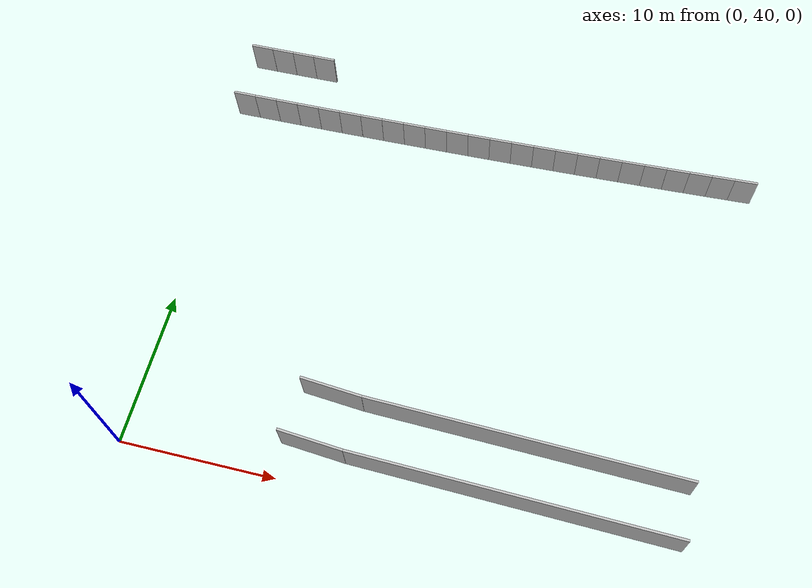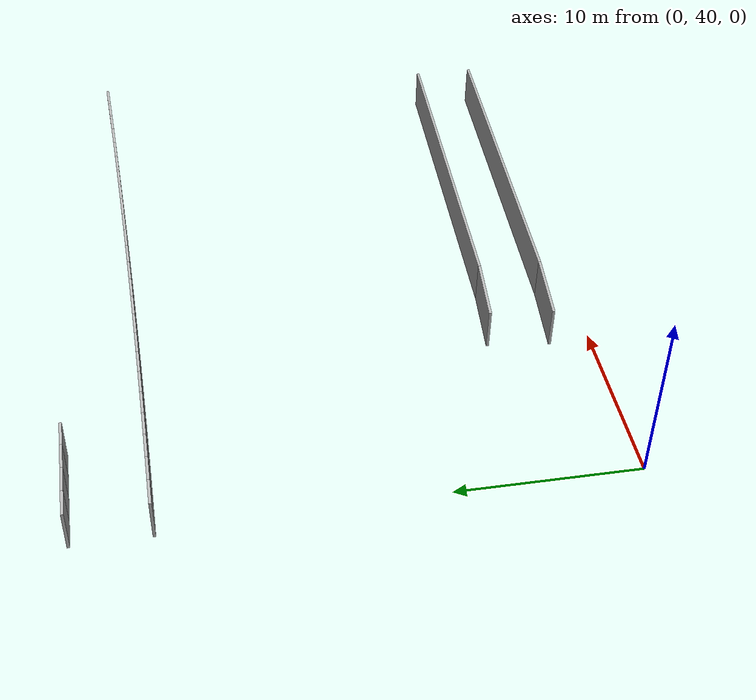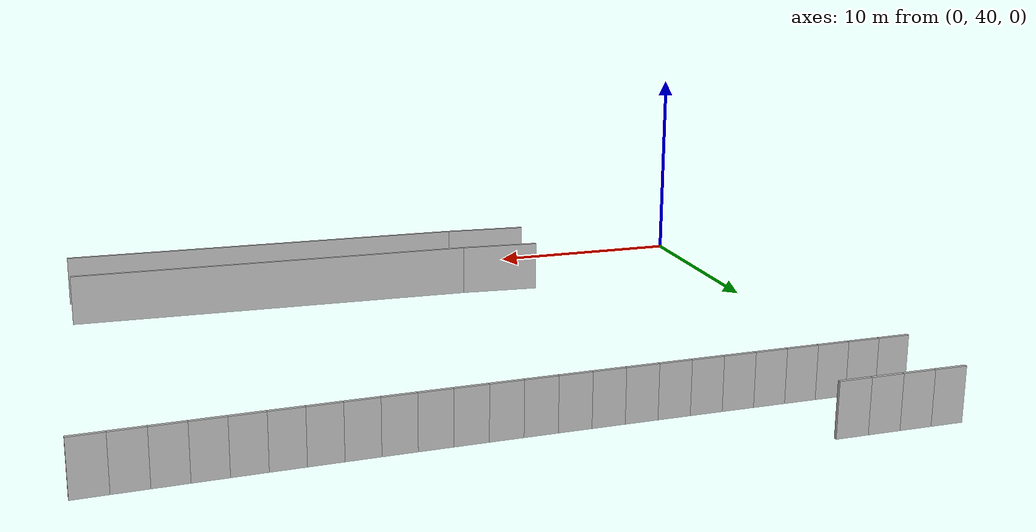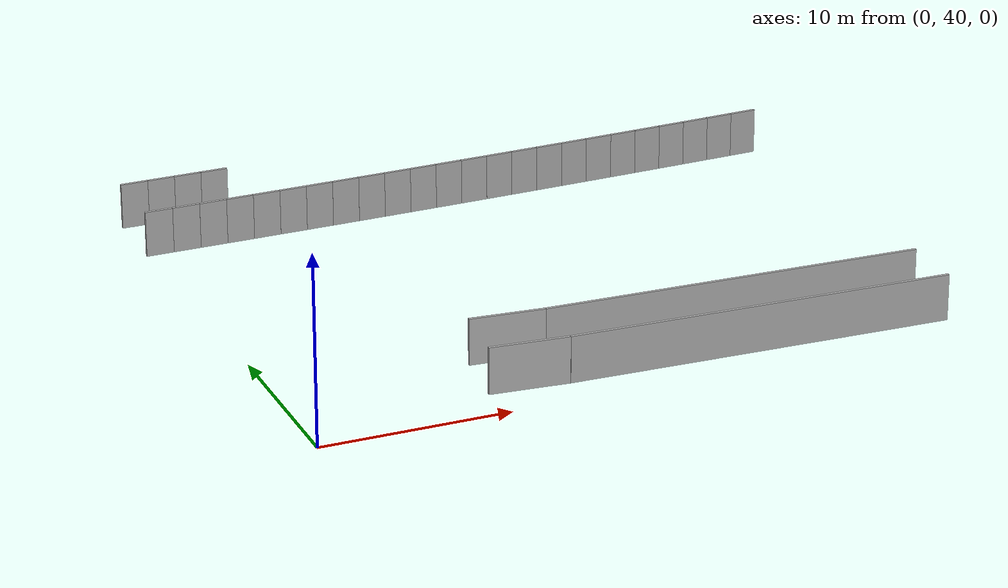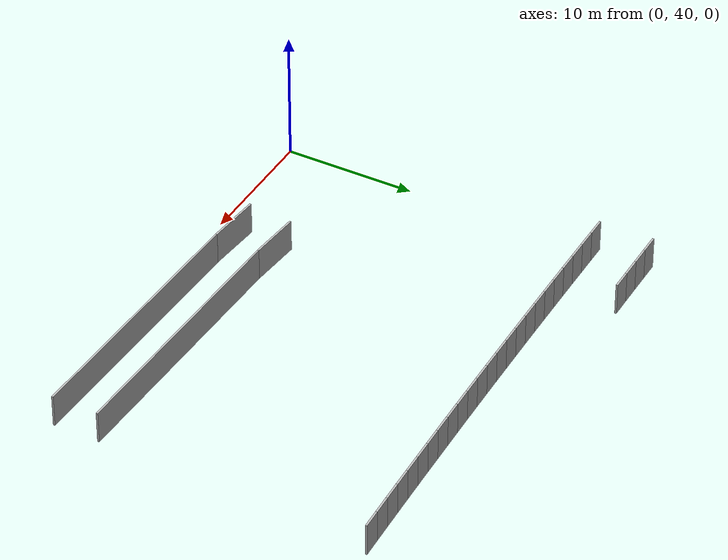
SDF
<sdf version="1.6">
 <model name="sps_1301">
  <static>1</static>
  <allow_auto_disable>0</allow_auto_disable>
  <link name="Wall306">
   <collision name="collision"><geometry><box><size>4.00867 0.15 2.5</size></box></geometry></collision>
   <visual name="visual">
    <geometry><box><size>4.00867 0.15 2.5</size></box></geometry>
    <transparency>0.0</transparency>
   </visual>
   <pose>12.0576 45.632 1.25 0 0 -0.0807692</pose>
  </link>
  <link name="Wall462">
   <collision name="collision"><geometry><box><size>20.6064 0.15 2.5</size></box></geometry></collision>
   <visual name="visual">
    <geometry><box><size>20.6064 0.15 2.5</size></box></geometry>
    <transparency>0.0</transparency>
   </visual>
   <pose>24.1696 41.7095 1.25 0 -0 3.11591</pose>
  </link>
  <link name="Wall463">
   <collision name="collision"><geometry><box><size>20.4207 0.15 2.5</size></box></geometry></collision>
   <visual name="visual">
    <geometry><box><size>20.4207 0.15 2.5</size></box></geometry>
    <transparency>0.0</transparency>
   </visual>
   <pose>24.2624 45.2081 1.25 0 0 -0.0256802</pose>
  </link>
  <link name="Wall562">
   <collision name="collision"><geometry><box><size>4.19887 0.15 2.5</size></box></geometry></collision>
   <visual name="visual">
    <geometry><box><size>4.19887 0.15 2.5</size></box></geometry>
    <transparency>0.0</transparency>
   </visual>
   <pose>11.7772 42.1435 1.25 0 -0 3.06082</pose>
  </link>
  <link name="Wall3711">
   <collision name="collision"><geometry><box><size>1.49648 0.15 2.5</size></box></geometry></collision>
   <visual name="visual">
    <geometry><box><size>1.49648 0.15 2.5</size></box></geometry>
    <transparency>0.0</transparency>
   </visual>
   <pose>0.188041 69.0983 1.25 0 -0 0.0104414</pose>
  </link>
  <link name="Wall3712">
   <collision name="collision"><geometry><box><size>1.49651 0.15 2.5</size></box></geometry></collision>
   <visual name="visual">
    <geometry><box><size>1.49651 0.15 2.5</size></box></geometry>
    <transparency>0.0</transparency>
   </visual>
   <pose>1.68444 69.1151 1.25 0 -0 0.0120319</pose>
  </link>
  <link name="Wall3713">
   <collision name="collision"><geometry><box><size>1.49678 0.15 2.5</size></box></geometry></collision>
   <visual name="visual">
    <geometry><box><size>1.49678 0.15 2.5</size></box></geometry>
    <transparency>0.0</transparency>
   </visual>
   <pose>3.18096 69.1343 1.25 0 -0 0.0136201</pose>
  </link>
  <link name="Wall3714">
   <collision name="collision"><geometry><box><size>1.49657 0.15 2.5</size></box></geometry></collision>
   <visual name="visual">
    <geometry><box><size>1.49657 0.15 2.5</size></box></geometry>
    <transparency>0.0</transparency>
   </visual>
   <pose>4.67748 69.1559 1.25 0 -0 0.0152535</pose>
  </link>
  <link name="Wall7486">
   <collision name="collision"><geometry><box><size>1.50307 0.15 2.5</size></box></geometry></collision>
   <visual name="visual">
    <geometry><box><size>1.50307 0.15 2.5</size></box></geometry>
    <transparency>0.0</transparency>
   </visual>
   <pose>0.234733 64.9581 1.25 0 -0 0.0103956</pose>
  </link>
  <link name="Wall7487">
   <collision name="collision"><geometry><box><size>1.50316 0.15 2.5</size></box></geometry></collision>
   <visual name="visual">
    <geometry><box><size>1.50316 0.15 2.5</size></box></geometry>
    <transparency>0.0</transparency>
   </visual>
   <pose>1.73775 64.975 1.25 0 -0 0.0121004</pose>
  </link>
  <link name="Wall7488">
   <collision name="collision"><geometry><box><size>1.50313 0.15 2.5</size></box></geometry></collision>
   <visual name="visual">
    <geometry><box><size>1.50313 0.15 2.5</size></box></geometry>
    <transparency>0.0</transparency>
   </visual>
   <pose>3.24078 64.9943 1.25 0 -0 0.0135626</pose>
  </link>
  <link name="Wall7489">
   <collision name="collision"><geometry><box><size>1.50298 0.15 2.5</size></box></geometry></collision>
   <visual name="visual">
    <geometry><box><size>1.50298 0.15 2.5</size></box></geometry>
    <transparency>0.0</transparency>
   </visual>
   <pose>4.74367 65.0159 1.25 0 -0 0.0151885</pose>
  </link>
  <link name="Wall7490">
   <collision name="collision"><geometry><box><size>1.50302 0.15 2.5</size></box></geometry></collision>
   <visual name="visual">
    <geometry><box><size>1.50302 0.15 2.5</size></box></geometry>
    <transparency>0.0</transparency>
   </visual>
   <pose>6.24648 65.0399 1.25 0 -0 0.016772</pose>
  </link>
  <link name="Wall7491">
   <collision name="collision"><geometry><box><size>1.50324 0.15 2.5</size></box></geometry></collision>
   <visual name="visual">
    <geometry><box><size>1.50324 0.15 2.5</size></box></geometry>
    <transparency>0.0</transparency>
   </visual>
   <pose>7.74938 65.0663 1.25 0 -0 0.0183533</pose>
  </link>
  <link name="Wall7492">
   <collision name="collision"><geometry><box><size>1.50286 0.15 2.5</size></box></geometry></collision>
   <visual name="visual">
    <geometry><box><size>1.50286 0.15 2.5</size></box></geometry>
    <transparency>0.0</transparency>
   </visual>
   <pose>9.25216 65.0951 1.25 0 -0 0.0199827</pose>
  </link>
  <link name="Wall7493">
   <collision name="collision"><geometry><box><size>1.50316 0.15 2.5</size></box></geometry></collision>
   <visual name="visual">
    <geometry><box><size>1.50316 0.15 2.5</size></box></geometry>
    <transparency>0.0</transparency>
   </visual>
   <pose>10.7548 65.1263 1.25 0 -0 0.0215221</pose>
  </link>
  <link name="Wall7494">
   <collision name="collision"><geometry><box><size>1.50321 0.15 2.5</size></box></geometry></collision>
   <visual name="visual">
    <geometry><box><size>1.50321 0.15 2.5</size></box></geometry>
    <transparency>0.0</transparency>
   </visual>
   <pose>12.2577 65.1599 1.25 0 -0 0.0231865</pose>
  </link>
  <link name="Wall7495">
   <collision name="collision"><geometry><box><size>1.50308 0.15 2.5</size></box></geometry></collision>
   <visual name="visual">
    <geometry><box><size>1.50308 0.15 2.5</size></box></geometry>
    <transparency>0.0</transparency>
   </visual>
   <pose>13.7604 65.1959 1.25 0 -0 0.0247319</pose>
  </link>
  <link name="Wall7496">
   <collision name="collision"><geometry><box><size>1.50308 0.15 2.5</size></box></geometry></collision>
   <visual name="visual">
    <geometry><box><size>1.50308 0.15 2.5</size></box></geometry>
    <transparency>0.0</transparency>
   </visual>
   <pose>15.263 65.2342 1.25 0 -0 0.0262349</pose>
  </link>
  <link name="Wall7497">
   <collision name="collision"><geometry><box><size>1.50302 0.15 2.5</size></box></geometry></collision>
   <visual name="visual">
    <geometry><box><size>1.50302 0.15 2.5</size></box></geometry>
    <transparency>0.0</transparency>
   </visual>
   <pose>16.7655 65.2748 1.25 0 -0 0.0277797</pose>
  </link>
  <link name="Wall7498">
   <collision name="collision"><geometry><box><size>1.50304 0.15 2.5</size></box></geometry></collision>
   <visual name="visual">
    <geometry><box><size>1.50304 0.15 2.5</size></box></geometry>
    <transparency>0.0</transparency>
   </visual>
   <pose>18.2679 65.3179 1.25 0 -0 0.0295668</pose>
  </link>
  <link name="Wall7499">
   <collision name="collision"><geometry><box><size>1.5031 0.15 2.5</size></box></geometry></collision>
   <visual name="visual">
    <geometry><box><size>1.5031 0.15 2.5</size></box></geometry>
    <transparency>0.0</transparency>
   </visual>
   <pose>19.7703 65.3634 1.25 0 -0 0.0309874</pose>
  </link>
  <link name="Wall7500">
   <collision name="collision"><geometry><box><size>1.503 0.15 2.5</size></box></geometry></collision>
   <visual name="visual">
    <geometry><box><size>1.503 0.15 2.5</size></box></geometry>
    <transparency>0.0</transparency>
   </visual>
   <pose>21.2725 65.4112 1.25 0 -0 0.0326148</pose>
  </link>
  <link name="Wall7501">
   <collision name="collision"><geometry><box><size>1.50308 0.15 2.5</size></box></geometry></collision>
   <visual name="visual">
    <geometry><box><size>1.50308 0.15 2.5</size></box></geometry>
    <transparency>0.0</transparency>
   </visual>
   <pose>22.7747 65.4614 1.25 0 -0 0.0341976</pose>
  </link>
  <link name="Wall7502">
   <collision name="collision"><geometry><box><size>1.50317 0.15 2.5</size></box></geometry></collision>
   <visual name="visual">
    <geometry><box><size>1.50317 0.15 2.5</size></box></geometry>
    <transparency>0.0</transparency>
   </visual>
   <pose>24.2769 65.5141 1.25 0 -0 0.0359426</pose>
  </link>
  <link name="Wall7503">
   <collision name="collision"><geometry><box><size>1.50324 0.15 2.5</size></box></geometry></collision>
   <visual name="visual">
    <geometry><box><size>1.50324 0.15 2.5</size></box></geometry>
    <transparency>0.0</transparency>
   </visual>
   <pose>25.7791 65.5691 1.25 0 -0 0.0372816</pose>
  </link>
  <link name="Wall7504">
   <collision name="collision"><geometry><box><size>1.50297 0.15 2.5</size></box></geometry></collision>
   <visual name="visual">
    <geometry><box><size>1.50297 0.15 2.5</size></box></geometry>
    <transparency>0.0</transparency>
   </visual>
   <pose>27.2812 65.6264 1.25 0 -0 0.0389951</pose>
  </link>
  <link name="Wall7505">
   <collision name="collision"><geometry><box><size>1.50325 0.15 2.5</size></box></geometry></collision>
   <visual name="visual">
    <geometry><box><size>1.50325 0.15 2.5</size></box></geometry>
    <transparency>0.0</transparency>
   </visual>
   <pose>28.7831 65.6862 1.25 0 -0 0.0405726</pose>
  </link>
  <link name="Wall7506">
   <collision name="collision"><geometry><box><size>1.50292 0.15 2.5</size></box></geometry></collision>
   <visual name="visual">
    <geometry><box><size>1.50292 0.15 2.5</size></box></geometry>
    <transparency>0.0</transparency>
   </visual>
   <pose>30.2849 65.7483 1.25 0 -0 0.0420855</pose>
  </link>
  <link name="Wall7507">
   <collision name="collision"><geometry><box><size>1.5032 0.15 2.5</size></box></geometry></collision>
   <visual name="visual">
    <geometry><box><size>1.5032 0.15 2.5</size></box></geometry>
    <transparency>0.0</transparency>
   </visual>
   <pose>31.7866 65.8127 1.25 0 -0 0.043622</pose>
  </link>
  <link name="Wall7508">
   <collision name="collision"><geometry><box><size>1.50295 0.15 2.5</size></box></geometry></collision>
   <visual name="visual">
    <geometry><box><size>1.50295 0.15 2.5</size></box></geometry>
    <transparency>0.0</transparency>
   </visual>
   <pose>33.2881 65.8796 1.25 0 -0 0.0454177</pose>
  </link>
  <link name="Wall7509">
   <collision name="collision"><geometry><box><size>1.50305 0.15 2.5</size></box></geometry></collision>
   <visual name="visual">
    <geometry><box><size>1.50305 0.15 2.5</size></box></geometry>
    <transparency>0.0</transparency>
   </visual>
   <pose>34.7895 65.9489 1.25 0 -0 0.0468375</pose>
  </link>
 </model>
</sdf>
